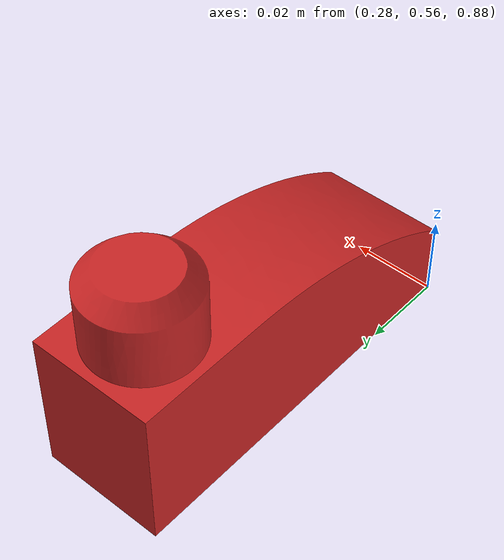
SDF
<?xml version="1.0" ?>
<sdf version="1.4">
  <world name="default">
    <physics type='ode'>
      <gravity>0 0 -9.81</gravity>
      <!-- max step size has to be a multiple of the desired task rate-->
      <max_step_size>0.001</max_step_size>
      <real_time_factor>1</real_time_factor>
    </physics>
    <!-- A global light source -->
    <include>
      <uri>model://sun</uri>
    </include>
     <gui>
    <camera name="gzclient_camera">
      <pose>1. 3.2 2.2 0. 0.4 -1.75</pose>
    </camera>
    </gui>
    <!-- A ground plane -->
    <include>
      <uri>model://ground_plane</uri>
    </include>
    <include>
      <name>X1-Y3-Z2-FILLET</name>
      <uri>model://X1-Y3-Z2-FILLET</uri>
      <pose>0.3 0.6 0.9 0 0 0</pose>
    </include>

  </world>
</sdf>

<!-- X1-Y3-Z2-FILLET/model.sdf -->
<sdf version="1.4">
  <model name="X1-Y3-Z2-FILLET">
    <static>false</static>
    <link name="link">
      <pose>0 0 0 0 0 0</pose>
      <inertial>
        <pose>0e-02 0.6707e-02 -0.4936e-02</pose>
        <mass>16.4195e-6</mass>
        <inertia>
          <ixx>169.806e-10</ixx>
          <ixy>-0.0027e-10</ixy>
          <ixz>-0.0005e-10</ixz>
          <iyy>57.322e-10</iyy>
          <iyz>-22.714e-10</iyz>
          <izz>158.658e-10</izz>
        </inertia>
      </inertial>

      <visual name="visual">
        <geometry>
          <mesh>
            <uri>model://X1-Y3-Z2-FILLET/meshes/X1-Y3-Z2-FILLET.stl</uri>
          </mesh>
        </geometry>
        <material>
          <script>
            <uri>file://media/materials/scripts/gazebo.material</uri>
            <name>Gazebo/Red</name>
          </script>
        </material>
      </visual>

      <collision name="collision">
        <geometry>
          <mesh>
            <uri>model://X1-Y3-Z2-FILLET/meshes/X1-Y3-Z2-FILLET.stl</uri>
          </mesh>
        </geometry>
      </collision>
    </link>
  </model>
</sdf>
